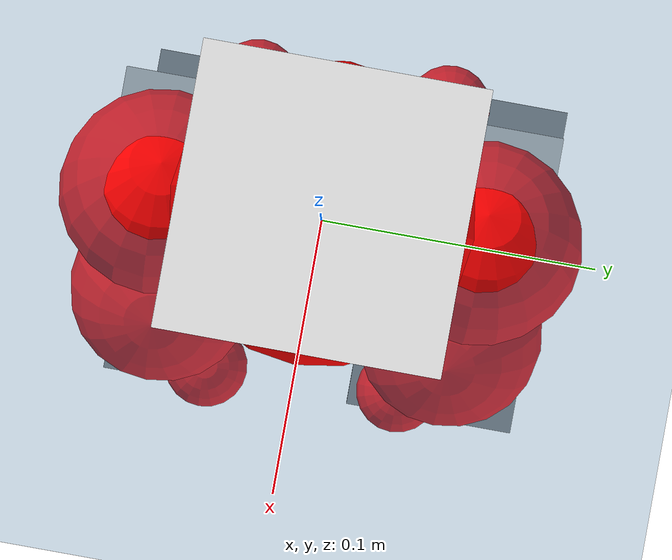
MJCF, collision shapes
<mujoco model="pi_12dof_release_v1">
  <compiler angle="radian" assetdir="assets" balanceinertia="true" inertiafromgeom="false"/>

  <option timestep="0.005" density="1.2" viscosity="2e-05"/>

  <size nkey="1"/>

  <visual>
    <quality shadowsize="8192"/>
    <map shadowclip="0.5"/>
  </visual>

  <default>
    <default class="/">
      <joint armature="0.01" damping="0.01" frictionloss="0.01"/>
      <geom contype="0" conaffinity="0" group="1" solref="-1000 -80"/>
      <site size="0.01 0.005 0.005" group="5"/>
      <general forcelimited="true" biastype="affine" gainprm="20" biasprm="0 -20 -0.5"/>
      <default class="foot">
        <geom size="0.0845 0.036 0.005" type="box" condim="6" group="4" priority="1" friction="0.9 0.2 0.2" solimp="0.015 1 0.005"/>
      </default>
      <default class="reward_collision_sphere">
        <geom group="5" rgba="1 0 0 1"/>
      </default>
    </default>
  </default>

  <asset>
    <texture type="skybox" colorspace="auto" name="//unnamed_texture_0" builtin="gradient" rgb1="0.95 0.95 0.95" rgb2="0.95 0.95 0.95" width="100" height="600"/>
    <texture type="2d" colorspace="auto" name="texplane" builtin="checker" rgb1="0.345 0.575 0.748" rgb2="0.345 0.575 0.748" markrgb="1 1 1" width="512" height="512"/>
    <material name="MatPlane" class="/" texture="texplane" texuniform="true" texrepeat="2 2" specular="0.9"/>
    <mesh name="baselink_1" class="/" file="baselink_1.STL"/>
    <mesh name="r_hip_pitch_link" class="/" file="r_hip_pitch_link.STL"/>
    <mesh name="r_hip_roll_link" class="/" file="r_hip_roll_link.STL"/>
    <mesh name="r_thigh_link" class="/" file="r_thigh_link.STL"/>
    <mesh name="r_calf_link" class="/" file="r_calf_link.STL"/>
    <mesh name="r_ankle_pitch_link" class="/" file="r_ankle_pitch_link.STL"/>
    <mesh name="r_ankle_roll_link" class="/" file="r_ankle_roll_link.STL"/>
    <mesh name="l_hip_pitch_link" class="/" file="l_hip_pitch_link.STL"/>
    <mesh name="l_hip_roll_link" class="/" file="l_hip_roll_link.STL"/>
    <mesh name="l_thigh_link" class="/" file="l_thigh_link.STL"/>
    <mesh name="l_calf_link" class="/" file="l_calf_link.STL"/>
    <mesh name="l_ankle_pitch_link" class="/" file="l_ankle_pitch_link.STL"/>
    <mesh name="l_ankle_roll_link" class="/" file="l_ankle_roll_link.STL"/>
  </asset>

  <worldbody>
    <geom name="floor" class="/" size="100 100 0.125" type="plane" group="0" material="MatPlane"/>
    <light name="toplight_shadow" class="/" pos="0 0 5" dir="0.0990148 0.0990148 -0.990148" type="directional" ambient="0.04 0.04 0.04" diffuse="0.55 0.55 0.55" specular="0.12 0.12 0.12"/>
    <light name="toplight_fill" class="/" pos="0 0 5" dir="0.0990148 0.0990148 -0.990148" type="directional" castshadow="false" ambient="0.04 0.04 0.04" diffuse="0.3 0.3 0.3" specular="0.08 0.08 0.08"/>
    <body name="trunk" pos="-0.00095985 5.26552e-05 -0.00247663" quat="0.999999 -0.00112705 5.92278e-05 -0.000724966">
      <inertial pos="0.000324665 0.0018242 0.0432197" quat="0.703595 0.0161012 0.00630083 0.710391" mass="1.86477" diaginertia="0.0096856 0.00323609 0.00581313"/>
      <joint name="//unnamed_joint_0" type="free"/>
      <geom name="//unnamed_geom_1" class="/" type="mesh" density="0" rgba="1 1 1 1" mesh="baselink_1"/>
      <geom name="//unnamed_geom_2" class="/" size="0.0476839 0.0476839 0.0476839" pos="0 0 0.0850029" type="box" rgba="1 1 1 1"/>
      <geom name="//unnamed_geom_3" class="reward_collision_sphere" size="0.0524523" pos="0 0 0.0743775"/>
      <site name="imu" class="/" pos="-0.00515615 0.0097424 -0.0135509" size="0.00953678"/>
      <camera name="track" class="/" pos="0 -1.61645 0" quat="0.707107 0.707107 0 0" mode="trackcom"/>
      <camera name="ego_camera" class="/" pos="0.0742704 0 0.191257" quat="-0.5 -0.5 0.5 0.5"/>
      <body name="r_hip_pitch_link" pos="0.00251251 -0.0175841 -0.0332244" quat="0.992197 -3.92385e-06 -0.124677 3.04732e-06">
        <inertial pos="-0.00177471 -0.045432 -0.00256025" quat="-0.00695448 0.708078 -0.0310299 0.705417" mass="0.313154" diaginertia="0.000104235 3.31896e-05 0.00011005"/>
        <joint name="r_hip_pitch_joint" class="/" pos="0 0 0" axis="-0.00302348 -0.999994 -0.00141196" range="-1.7694 1.26116" armature="0.00979949" damping="0.0105139" frictionloss="0.00902426"/>
        <geom name="//unnamed_geom_4" class="/" type="mesh" density="0" rgba="0.75294 0.75294 0.75294 1" mesh="r_hip_pitch_link"/>
        <geom name="//unnamed_geom_5" class="/" size="0.000476839 0.000476839 0.000476839" type="box" rgba="0.75294 0.75294 0.75294 1"/>
        <body name="r_hip_roll_link" pos="-0.00156308 -0.042864 0.00261606" quat="1 3.20025e-05 -0.000126863 0.000443185">
          <inertial pos="-0.00257568 -0.000100635 -0.0636029" quat="0.706204 -0.0793802 -0.0820394 0.698745" mass="0.321891" diaginertia="0.000303443 9.26461e-05 0.000162123"/>
          <joint name="r_hip_roll_joint" class="/" pos="0 0 0" axis="-0.99992 -0.00520278 -0.01152" stiffness="0.00187614" range="-0.126822 0.503296" armature="0.00843569" damping="0.0106984" frictionloss="0.0105287"/>
          <geom name="//unnamed_geom_6" class="/" type="mesh" density="0" rgba="0.75294 0.75294 0.75294 1" mesh="r_hip_roll_link"/>
          <geom name="//unnamed_geom_7" class="/" size="0.000476839 0.000476839 0.000476839" type="box" rgba="0.75294 0.75294 0.75294 1"/>
          <geom name="//unnamed_geom_8" class="reward_collision_sphere" size="0.0381471"/>
          <body name="r_thigh_link" pos="0.00119465 0.00171325 -0.0739376" quat="1 0.000124662 -0.000288455 -0.000432948">
            <inertial pos="-0.00183439 -0.00184409 -0.0514019" quat="0.737378 0.675481 0.000581331 0.000239575" mass="0.0977318" diaginertia="0.000114457 3.22181e-05 7.79832e-05"/>
            <joint name="r_thigh_joint" class="/" pos="0 0 0" axis="-0.00358572 -0.00266845 -0.99999" stiffness="0.00379452" range="-0.330429 0.647944" armature="0.00852996" damping="0.0174973" frictionloss="0.0100496"/>
            <geom name="//unnamed_geom_9" class="/" type="mesh" density="0" rgba="0.75294 0.75294 0.75294 1" mesh="r_thigh_link"/>
            <geom name="//unnamed_geom_10" class="/" size="0.000476839 0.000476839 0.000476839" type="box" rgba="0.75294 0.75294 0.75294 1"/>
            <body name="r_calf_link" pos="-0.00214127 -0.00155533 -0.07442" quat="0.94793 -0.000802078 0.318477 -2.24016e-05">
              <inertial pos="-0.0013554 -0.000620652 -0.074356" quat="0.999857 -0.00730162 -0.00699334 0.0135568" mass="0.728941" diaginertia="0.00331676 0.00120166 0.00023393"/>
              <joint name="r_calf_joint" class="/" pos="0 0 0" axis="-0.000682724 -0.999998 -0.00183339" range="-1.65339 0.680714" armature="0.00946201" damping="0.0105911" frictionloss="0.00926238"/>
              <geom name="//unnamed_geom_11" class="/" type="mesh" density="0" rgba="0.75294 0.75294 0.75294 1" mesh="r_calf_link"/>
              <geom name="//unnamed_geom_12" class="/" size="0.000476839 0.000476839 0.000476839" type="box" rgba="0.75294 0.75294 0.75294 1"/>
              <geom name="//unnamed_geom_13" class="reward_collision_sphere" size="0.0381471"/>
              <body name="r_ankle_pitch_link" pos="0.00187519 -0.000197337 -0.150341" quat="0.979989 -0.000487763 -0.19905 4.57101e-05">
                <inertial pos="0.0035047 0.00305028 -0.00030954" quat="0.000164606 0.706861 -0.00305891 0.707346" mass="0.157773" diaginertia="0.000294201 7.38853e-05 0.000164234"/>
                <joint name="r_ankle_pitch_joint" class="/" pos="0 0 0" axis="-0.00587106 -0.999952 0.00782769" range="-1.33254 0.504746" armature="0.00932831" damping="0.0209107" frictionloss="0.00902531"/>
                <geom name="//unnamed_geom_14" class="/" type="mesh" density="0" rgba="0.75294 0.75294 0.75294 1" mesh="r_ankle_pitch_link"/>
                <geom name="//unnamed_geom_15" class="/" size="0.0371935 0.0381471 0.023842" type="box" rgba="0.75294 0.75294 0.75294 1"/>
                <body name="r_ankle_roll_link" pos="0.0736246 0.00204685 0.000704164" quat="1 0.000510056 -9.21776e-05 -2.38526e-05">
                  <inertial pos="-0.023095 -0.00259964 -0.0128268" quat="0.562182 0.423032 0.441858 0.556558" mass="0.440471" diaginertia="0.00104312 0.000355551 0.000360382"/>
                  <joint name="r_ankle_roll_joint" class="/" pos="0 0 0" axis="-1 -0.000343273 -0.000208084" range="-0.194698 0.191574" armature="0.00822597" damping="0" frictionloss="0.00826695"/>
                  <geom name="//unnamed_geom_16" class="/" type="mesh" density="0" rgba="0.75294 0.75294 0.75294 1" mesh="r_ankle_roll_link"/>
                  <geom name="//unnamed_geom_17" class="/" type="mesh" rgba="0.75294 0.75294 0.75294 1" mesh="r_ankle_roll_link"/>
                  <geom name="right_foot" class="foot" size="0.07474 0.030269 0.00426289" pos="-0.0505038 0 -0.0467516"/>
                  <geom name="//unnamed_geom_19" class="reward_collision_sphere" size="0.0381471" pos="-0.0495136 0 -0.0212507"/>
                  <geom name="//unnamed_geom_20" class="reward_collision_sphere" size="0.0190736" pos="0.0148541 0.0161645 -0.0425015"/>
                  <geom name="//unnamed_geom_21" class="reward_collision_sphere" size="0.0190736" pos="-0.118833 0.0161645 -0.0425015"/>
                  <site name="right_foot" class="foot" pos="-0.0505038 0 -0.0467516" size="0.00953678"/>
                </body>
              </body>
            </body>
          </body>
        </body>
      </body>
      <body name="l_hip_pitch_link" pos="-0.000771016 0.0165308 -0.0325748" quat="0.992191 -5.29771e-05 -0.124727 -4.79746e-05">
        <inertial pos="0.000184402 0.0407656 -0.00224238" quat="-0.036563 0.704364 0.0292406 0.708294" mass="0.333255" diaginertia="0.000117344 3.5654e-05 0.00012865"/>
        <joint name="l_hip_pitch_joint" class="/" pos="0 0 0" axis="0.00789705 0.999888 -0.0126859" range="-1.29721 1.72269" armature="0.0094492" damping="0" frictionloss="0.0103067"/>
        <geom name="//unnamed_geom_22" class="/" type="mesh" density="0" rgba="0.75294 0.75294 0.75294 1" mesh="l_hip_pitch_link"/>
        <geom name="//unnamed_geom_23" class="/" size="0.000476839 0.000476839 0.000476839" type="box" rgba="0.75294 0.75294 0.75294 1"/>
        <body name="l_hip_roll_link" pos="-0.000711268 0.0423944 0.00213784" quat="0.999999 -0.000163517 -0.00115364 0.000439265">
          <inertial pos="0.000627158 -0.00269878 -0.0671548" quat="0.699283 -0.0752969 -0.0780122 0.706575" mass="0.345383" diaginertia="0.000336516 9.69585e-05 0.000184056"/>
          <joint name="l_hip_roll_joint" class="/" pos="0 0 0" axis="-0.999997 -0.00241542 0.000689543" stiffness="0.000891442" range="-0.497506 0.0760319" armature="0.00841664" damping="0.016015" frictionloss="0.00955355"/>
          <geom name="//unnamed_geom_24" class="/" type="mesh" density="0" rgba="0.75294 0.75294 0.75294 1" mesh="l_hip_roll_link"/>
          <geom name="//unnamed_geom_25" class="/" size="0.000476839 0.000476839 0.000476839" type="box" rgba="0.75294 0.75294 0.75294 1"/>
          <geom name="//unnamed_geom_26" class="reward_collision_sphere" size="0.0381471"/>
          <body name="l_thigh_link" pos="-0.00263705 0.000177007 -0.0755555" quat="0.999999 -0.000131959 -0.000775864 0.00106715">
            <inertial pos="-0.00205859 0.000545186 -0.0530091" quat="0.670367 0.741934 0.0117899 0.00186446" mass="0.0947477" diaginertia="0.000114862 3.1015e-05 7.6767e-05"/>
            <joint name="l_thigh_joint" class="/" pos="0 0 0" axis="-0.000422435 -0.00114292 -0.999999" stiffness="0.00123981" range="-0.606885 0.324614" armature="0.0097786" damping="0.000950972" frictionloss="0.0106679"/>
            <geom name="//unnamed_geom_27" class="/" type="mesh" density="0" rgba="0.75294 0.75294 0.75294 1" mesh="l_thigh_link"/>
            <geom name="//unnamed_geom_28" class="/" size="0.000476839 0.000476839 0.000476839" type="box" rgba="0.75294 0.75294 0.75294 1"/>
            <body name="l_calf_link" pos="0.00114713 -0.000191534 -0.0723482" quat="0.947648 7.88116e-06 0.319316 -4.09595e-05">
              <inertial pos="-0.0024546 0.000156599 -0.0748399" quat="0.99982 0.0132484 0.00271719 0.0133273" mass="0.708562" diaginertia="0.00357063 0.0012526 0.000248663"/>
              <joint name="l_calf_joint" class="/" pos="0 0 0" axis="0.0101372 0.999942 -0.0036715" range="-0.705568 1.70668" armature="0.00925342" damping="0" frictionloss="0.0106207"/>
              <geom name="//unnamed_geom_29" class="/" type="mesh" density="0" rgba="0.75294 0.75294 0.75294 1" mesh="l_calf_link"/>
              <geom name="//unnamed_geom_30" class="/" size="0.000476839 0.000476839 0.000476839" type="box" rgba="0.75294 0.75294 0.75294 1"/>
              <geom name="//unnamed_geom_31" class="reward_collision_sphere" size="0.0381471"/>
              <body name="l_ankle_pitch_link" pos="0.00143254 0.00100802 -0.149789" quat="0.980035 0.000230698 -0.198823 -0.000509283">
                <inertial pos="0.00612278 -0.00283972 -0.00278435" quat="0.000858107 0.699477 -0.00126685 0.714653" mass="0.148544" diaginertia="0.00030392 7.62855e-05 0.000160996"/>
                <joint name="l_ankle_pitch_joint" class="/" pos="0 0 0" axis="0.000227977 0.999996 -0.00287339" stiffness="0.0108373" range="-0.554517 1.29358" armature="0.00904239" damping="0" frictionloss="0.00823579"/>
                <geom name="//unnamed_geom_32" class="/" type="mesh" density="0" rgba="0.75294 0.75294 0.75294 1" mesh="l_ankle_pitch_link"/>
                <geom name="//unnamed_geom_33" class="/" size="0.0371935 0.0381471 0.023842" type="box" rgba="0.75294 0.75294 0.75294 1"/>
                <body name="l_ankle_roll_link" pos="0.0722308 0.00319949 -0.00260671" quat="0.999999 0.000318981 0.00023522 -0.000993483">
                  <inertial pos="-0.0241267 -0.000414297 -0.0160851" quat="0.569382 0.422364 0.436073 0.554304" mass="0.467449" diaginertia="0.00112052 0.000372243 0.000380441"/>
                  <joint name="l_ankle_roll_joint" class="/" pos="0 0 0" axis="-1 -1.96029e-05 -0.000627055" stiffness="0.00222406" range="-0.169486 0.109032" armature="0.0093585" damping="0" frictionloss="0.00889224"/>
                  <geom name="//unnamed_geom_34" class="/" type="mesh" density="0" rgba="0.75294 0.75294 0.75294 1" mesh="l_ankle_roll_link"/>
                  <geom name="//unnamed_geom_35" class="/" type="mesh" rgba="0.75294 0.75294 0.75294 1" mesh="l_ankle_roll_link"/>
                  <geom name="left_foot" class="foot" size="0.0752387 0.0383609 0.00423413" pos="-0.0505038 0 -0.0467516"/>
                  <geom name="//unnamed_geom_37" class="reward_collision_sphere" size="0.0381471" pos="-0.0495136 0 -0.0212507"/>
                  <geom name="//unnamed_geom_38" class="reward_collision_sphere" size="0.0190736" pos="0.0148541 -0.0161645 -0.0425015"/>
                  <geom name="//unnamed_geom_39" class="reward_collision_sphere" size="0.0190736" pos="-0.118833 -0.0161645 -0.0425015"/>
                  <site name="left_foot" class="foot" pos="-0.0505038 0 -0.0467516" size="0.00953678"/>
                </body>
              </body>
            </body>
          </body>
        </body>
      </body>
    </body>
  </worldbody>

  <contact>
    <pair class="/" geom1="floor" geom2="right_foot" name="//unnamed_contact_1"/>
    <pair class="/" geom1="floor" geom2="left_foot" name="//unnamed_contact_0"/>
  </contact>

  <actuator>
    <general name="r_hip_pitch_joint" class="/" joint="r_hip_pitch_joint" forcerange="-22.1539 22.1539" gainprm="18.0996" biasprm="0 -18.0996 -0.44575"/>
    <general name="r_hip_roll_joint" class="/" joint="r_hip_roll_joint" forcerange="-18.3152 18.3152" gainprm="18.0996" biasprm="0 -18.0996 -0.44575"/>
    <general name="r_thigh_joint" class="/" joint="r_thigh_joint" forcerange="-20.0124 20.0124" gainprm="18.0996" biasprm="0 -18.0996 -0.44575"/>
    <general name="r_calf_joint" class="/" joint="r_calf_joint" forcerange="-21.6273 21.6273" gainprm="18.0996" biasprm="0 -18.0996 -0.44575"/>
    <general name="r_ankle_pitch_joint" class="/" joint="r_ankle_pitch_joint" forcerange="-19.2682 19.2682" gainprm="18.0996" biasprm="0 -18.0996 -0.44575"/>
    <general name="r_ankle_roll_joint" class="/" joint="r_ankle_roll_joint" forcerange="-18.2548 18.2548" gainprm="18.0996" biasprm="0 -18.0996 -0.44575"/>
    <general name="l_hip_pitch_joint" class="/" joint="l_hip_pitch_joint" forcerange="-19.8018 19.8018" gainprm="18.0996" biasprm="0 -18.0996 -0.44575"/>
    <general name="l_hip_roll_joint" class="/" joint="l_hip_roll_joint" forcerange="-19.2584 19.2584" gainprm="18.0996" biasprm="0 -18.0996 -0.44575"/>
    <general name="l_thigh_joint" class="/" joint="l_thigh_joint" forcerange="-21.4092 21.4092" gainprm="18.0996" biasprm="0 -18.0996 -0.44575"/>
    <general name="l_calf_joint" class="/" joint="l_calf_joint" forcerange="-20.8168 20.8168" gainprm="18.0996" biasprm="0 -18.0996 -0.44575"/>
    <general name="l_ankle_pitch_joint" class="/" joint="l_ankle_pitch_joint" forcerange="-21.2611 21.2611" gainprm="18.0996" biasprm="0 -18.0996 -0.44575"/>
    <general name="l_ankle_roll_joint" class="/" joint="l_ankle_roll_joint" forcerange="-19.6946 19.6946" gainprm="18.0996" biasprm="0 -18.0996 -0.44575"/>
  </actuator>

  <sensor>
    <gyro site="imu" name="imu_angular_velocity"/>
    <velocimeter site="imu" name="imu_linear_velocity"/>
    <framelinvel objtype="site" objname="left_foot" name="left_foot_global_linear_velocity"/>
    <framelinvel objtype="site" objname="right_foot" name="right_foot_global_linear_velocity"/>
  </sensor>

  <keyframe>
    <key name="home" qpos="0 0 0.291 1 0 0 0 0.4 0 0 -0.8 0.4 0 -0.4 0 0 0.8 -0.4 0"/>
  </keyframe>
</mujoco>
